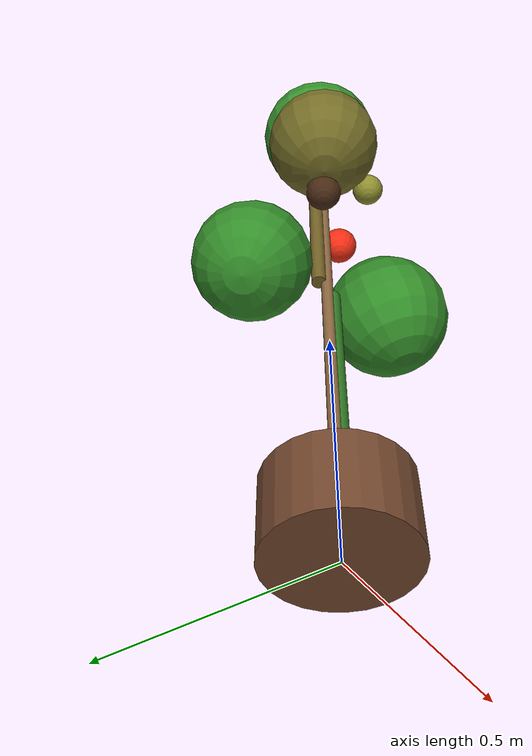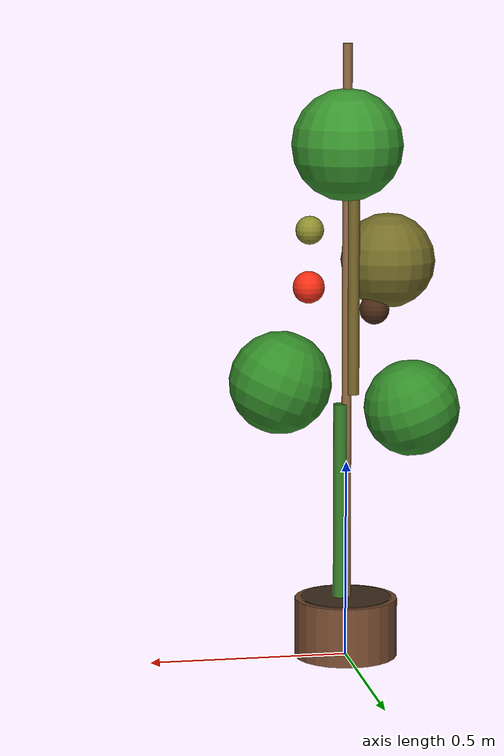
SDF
<?xml version="1.0"?>
<sdf version="1.10">
  <model name="tomato_plant_diseased">
    <static>true</static>

    <link name="pot">
      <pose>0 0 0.075 0 0 0</pose>
      <visual name="v"><geometry><cylinder><radius>0.13</radius><length>0.15</length></cylinder></geometry>
        <material><ambient>0.30 0.20 0.13 1</ambient><diffuse>0.45 0.28 0.18 1</diffuse></material>
      </visual>
      <collision name="c"><geometry><cylinder><radius>0.13</radius><length>0.15</length></cylinder></geometry></collision>
    </link>
    <link name="pot_soil">
      <pose>0 0 0.148 0 0 0</pose>
      <visual name="v"><geometry><cylinder><radius>0.115</radius><length>0.01</length></cylinder></geometry>
        <material><ambient>0.18 0.13 0.08 1</ambient><diffuse>0.25 0.18 0.12 1</diffuse></material>
      </visual>
    </link>

    <link name="stake">
      <pose>0 0 0.85 0 0 0</pose>
      <visual name="v"><geometry><cylinder><radius>0.012</radius><length>1.4</length></cylinder></geometry>
        <material><ambient>0.35 0.25 0.15 1</ambient><diffuse>0.55 0.40 0.25 1</diffuse></material>
      </visual>
    </link>

    <!-- Stem (greener at base, brown at top — typical late blight progression) -->
    <link name="stem_lower">
      <pose>0.015 0 0.40 0 0 0</pose>
      <visual name="v"><geometry><cylinder><radius>0.018</radius><length>0.50</length></cylinder></geometry>
        <material><ambient>0.14 0.30 0.10 1</ambient><diffuse>0.20 0.48 0.15 1</diffuse></material>
      </visual>
    </link>
    <link name="stem_upper">
      <pose>-0.015 0.010 0.95 0 0 0</pose>
      <visual name="v"><geometry><cylinder><radius>0.015</radius><length>0.55</length></cylinder></geometry>
        <material><ambient>0.30 0.25 0.10 1</ambient><diffuse>0.45 0.38 0.15 1</diffuse></material>
      </visual>
    </link>

    <!-- Mostly green leaves with one brown patch — disease in progress -->
    <link name="leaves_healthy_l">
      <pose>-0.15 0.08 0.65 0 0.4 0.3</pose>
      <visual name="v"><geometry><sphere><radius>0.12</radius></sphere></geometry>
        <material><ambient>0.14 0.36 0.11 1</ambient><diffuse>0.20 0.55 0.16 1</diffuse></material>
      </visual>
    </link>
    <link name="leaves_healthy_r">
      <pose>0.16 -0.05 0.70 0 -0.4 -0.2</pose>
      <visual name="v"><geometry><sphere><radius>0.13</radius></sphere></geometry>
        <material><ambient>0.14 0.36 0.11 1</ambient><diffuse>0.20 0.55 0.16 1</diffuse></material>
      </visual>
    </link>
    <link name="leaves_blighted">
      <pose>-0.12 -0.08 1.00 0 0 0</pose>
      <visual name="v"><geometry><sphere><radius>0.12</radius></sphere></geometry>
        <material><ambient>0.30 0.32 0.10 1</ambient><diffuse>0.45 0.42 0.15 1</diffuse></material>     <!-- yellow-green -->
      </visual>
    </link>
    <link name="leaves_top">
      <pose>0.00 0.00 1.30 0 0 0</pose>
      <visual name="v"><geometry><sphere><radius>0.14</radius></sphere></geometry>
        <material><ambient>0.16 0.40 0.12 1</ambient><diffuse>0.22 0.58 0.18 1</diffuse></material>
      </visual>
    </link>

    <!-- Dark blight spots on the leaves (small dark spheres) -->
    <link name="spot_1"><pose>-0.12 0.10 0.66 0 0 0</pose>
      <visual name="v"><geometry><sphere><radius>0.020</radius></sphere></geometry>
        <material><ambient>0.10 0.06 0.04 1</ambient><diffuse>0.15 0.08 0.05 1</diffuse></material>
      </visual>
    </link>
    <link name="spot_2"><pose>-0.18 0.04 0.67 0 0 0</pose>
      <visual name="v"><geometry><sphere><radius>0.018</radius></sphere></geometry>
        <material><ambient>0.10 0.06 0.04 1</ambient><diffuse>0.15 0.08 0.05 1</diffuse></material>
      </visual>
    </link>
    <link name="spot_3"><pose>0.18 -0.04 0.71 0 0 0</pose>
      <visual name="v"><geometry><sphere><radius>0.022</radius></sphere></geometry>
        <material><ambient>0.10 0.06 0.04 1</ambient><diffuse>0.15 0.08 0.05 1</diffuse></material>
      </visual>
    </link>

    <!-- Aphid cluster (tiny yellowish dots on a leaf) — VLA target class "pest" -->
    <link name="aphid_a"><pose>0.13 -0.02 0.72 0 0 0</pose>
      <visual name="v"><geometry><sphere><radius>0.005</radius></sphere></geometry>
        <material><ambient>0.55 0.50 0.10 1</ambient><diffuse>0.75 0.68 0.15 1</diffuse></material>
      </visual>
    </link>
    <link name="aphid_b"><pose>0.14 -0.05 0.71 0 0 0</pose>
      <visual name="v"><geometry><sphere><radius>0.005</radius></sphere></geometry>
        <material><ambient>0.55 0.50 0.10 1</ambient><diffuse>0.75 0.68 0.15 1</diffuse></material>
      </visual>
    </link>
    <link name="aphid_c"><pose>0.15 -0.03 0.73 0 0 0</pose>
      <visual name="v"><geometry><sphere><radius>0.005</radius></sphere></geometry>
        <material><ambient>0.55 0.50 0.10 1</ambient><diffuse>0.75 0.68 0.15 1</diffuse></material>
      </visual>
    </link>
    <link name="aphid_d"><pose>0.155 -0.045 0.715 0 0 0</pose>
      <visual name="v"><geometry><sphere><radius>0.005</radius></sphere></geometry>
        <material><ambient>0.55 0.50 0.10 1</ambient><diffuse>0.75 0.68 0.15 1</diffuse></material>
      </visual>
    </link>

    <!-- A caterpillar resting on a leaf (small green elongated cylinder) -->
    <link name="caterpillar">
      <pose>-0.10 0.05 0.66 0 1.5708 0.3</pose>
      <visual name="v"><geometry><cylinder><radius>0.010</radius><length>0.05</length></cylinder></geometry>
        <material><ambient>0.40 0.55 0.12 1</ambient><diffuse>0.55 0.72 0.18 1</diffuse></material>
      </visual>
    </link>

    <!-- Fruits: 1 healthy red, 1 rotted/black, 1 unripe with blight -->
    <link name="fruit_healthy"><pose>0.10 0.02 0.95 0 0 0</pose>
      <visual name="v"><geometry><sphere><radius>0.040</radius></sphere></geometry>
        <material><ambient>0.75 0.10 0.05 1</ambient><diffuse>0.95 0.18 0.08 1</diffuse><specular>0.4 0.1 0.1 1</specular></material>
      </visual>
      <collision name="c"><geometry><sphere><radius>0.040</radius></sphere></geometry></collision>
    </link>
    <link name="fruit_rotted"><pose>-0.08 -0.05 0.88 0 0 0</pose>
      <visual name="v"><geometry><sphere><radius>0.038</radius></sphere></geometry>
        <material><ambient>0.18 0.10 0.05 1</ambient><diffuse>0.28 0.16 0.08 1</diffuse></material>           <!-- blackened rot -->
      </visual>
      <collision name="c"><geometry><sphere><radius>0.038</radius></sphere></geometry></collision>
    </link>
    <link name="fruit_blighted"><pose>0.08 -0.08 1.08 0 0 0</pose>
      <visual name="v"><geometry><sphere><radius>0.036</radius></sphere></geometry>
        <material><ambient>0.40 0.45 0.12 1</ambient><diffuse>0.55 0.55 0.18 1</diffuse></material>           <!-- sickly yellow-green -->
      </visual>
      <collision name="c"><geometry><sphere><radius>0.036</radius></sphere></geometry></collision>
    </link>

    <!-- Joints -->
    <joint name="j_stake" type="fixed"><parent>pot</parent><child>stake</child></joint>
    <joint name="j_soil"  type="fixed"><parent>pot</parent><child>pot_soil</child></joint>
    <joint name="j_sl"    type="fixed"><parent>stake</parent><child>stem_lower</child></joint>
    <joint name="j_su"    type="fixed"><parent>stake</parent><child>stem_upper</child></joint>
    <joint name="j_lh_l"  type="fixed"><parent>stake</parent><child>leaves_healthy_l</child></joint>
    <joint name="j_lh_r"  type="fixed"><parent>stake</parent><child>leaves_healthy_r</child></joint>
    <joint name="j_lb"    type="fixed"><parent>stake</parent><child>leaves_blighted</child></joint>
    <joint name="j_lt"    type="fixed"><parent>stake</parent><child>leaves_top</child></joint>
    <joint name="j_sp1"   type="fixed"><parent>stake</parent><child>spot_1</child></joint>
    <joint name="j_sp2"   type="fixed"><parent>stake</parent><child>spot_2</child></joint>
    <joint name="j_sp3"   type="fixed"><parent>stake</parent><child>spot_3</child></joint>
    <joint name="j_a1"    type="fixed"><parent>stake</parent><child>aphid_a</child></joint>
    <joint name="j_a2"    type="fixed"><parent>stake</parent><child>aphid_b</child></joint>
    <joint name="j_a3"    type="fixed"><parent>stake</parent><child>aphid_c</child></joint>
    <joint name="j_a4"    type="fixed"><parent>stake</parent><child>aphid_d</child></joint>
    <joint name="j_cat"   type="fixed"><parent>stake</parent><child>caterpillar</child></joint>
    <joint name="j_fh"    type="fixed"><parent>stake</parent><child>fruit_healthy</child></joint>
    <joint name="j_fr"    type="fixed"><parent>stake</parent><child>fruit_rotted</child></joint>
    <joint name="j_fb"    type="fixed"><parent>stake</parent><child>fruit_blighted</child></joint>
  </model>
</sdf>
